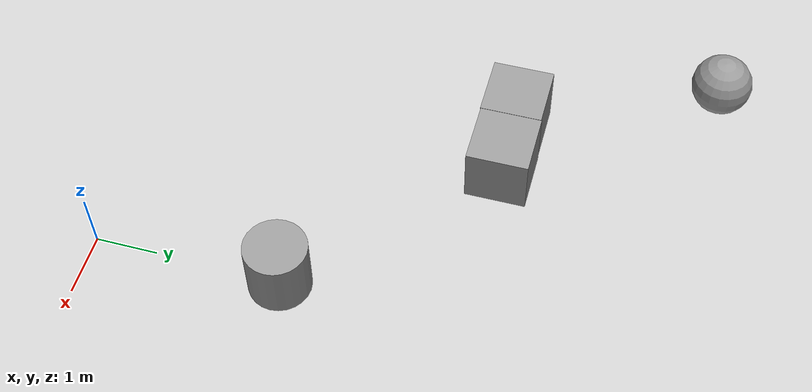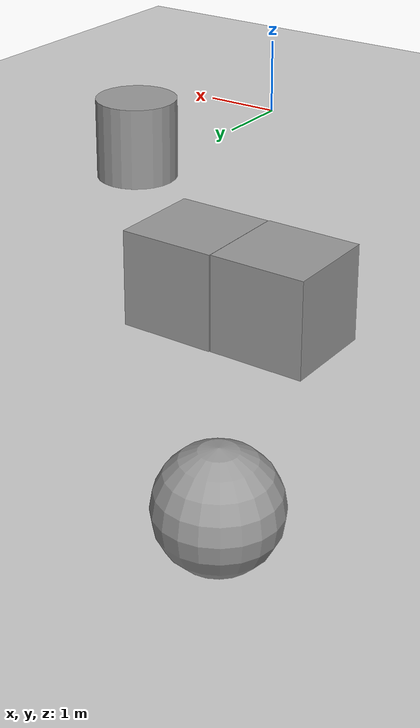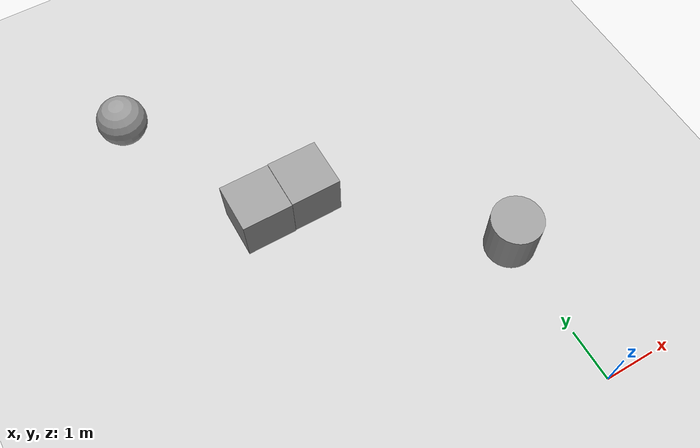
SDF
<sdf version="1.6">
 <world name="default">
  <light name="sun" type="directional">
   <pose>0 0 10 0 -0 0</pose>
   <diffuse>0.8 0.8 0.8 1</diffuse>
   <specular>0.1 0.1 0.1 1</specular>
   <attenuation>
    <range>1000</range>
    <constant>0.9</constant>
    <linear>0.01</linear>
    <quadratic>0.001</quadratic>
   </attenuation>
   <direction>-0.5 0.5 -1</direction>
  </light>
  <model name="ground_plane">
   <static>1</static>
   <link name="link">
    <collision name="collision">
     <geometry><plane><normal>0 0 1</normal><size>100 100</size></plane></geometry>
     <surface><friction><ode><mu>100</mu><mu2>50</mu2></ode></friction></surface>
    </collision>
    <visual name="visual">
     <cast_shadows>0</cast_shadows>
     <geometry><plane><normal>0 0 1</normal><size>100 100</size></plane></geometry>
     <material>
      <script><uri>file://media/materials/scripts/gazebo.material</uri><name>Gazebo/Grey</name></script>
     </material>
    </visual>
   </link>
  </model>
  <gravity>0 0 -9.8</gravity>
  <magnetic_field>6e-06 2.3e-05 -4.2e-05</magnetic_field>
  <atmosphere type="adiabatic"/>
  <physics name="default_physics" default="0" type="ode">
   <max_step_size>0.001</max_step_size>
   <real_time_factor>1</real_time_factor>
   <real_time_update_rate>1000</real_time_update_rate>
  </physics>
  <scene><ambient>0.4 0.4 0.4 1</ambient><background>0.7 0.7 0.7 1</background><shadows>1</shadows></scene>
  <spherical_coordinates>
   <surface_model>EARTH_WGS84</surface_model>
   <latitude_deg>0</latitude_deg>
   <longitude_deg>0</longitude_deg>
   <elevation>0</elevation>
   <heading_deg>0</heading_deg>
  </spherical_coordinates>
  <model name="unit_box_0_0">
   <pose>-3.86241 5.85747 0.499995 -1e-05 0 0</pose>
   <link name="link">
    <inertial>
     <mass>1</mass>
     <inertia>
      <ixx>0.166667</ixx>
      <ixy>0</ixy>
      <ixz>0</ixz>
      <iyy>0.166667</iyy>
      <iyz>0</iyz>
      <izz>0.166667</izz>
     </inertia>
    </inertial>
    <collision name="collision"><geometry><box><size>1 1 1</size></box></geometry></collision>
    <visual name="visual">
     <geometry><box><size>1 1 1</size></box></geometry>
     <material>
      <script><name>Gazebo/Grey</name><uri>file://media/materials/scripts/gazebo.material</uri></script>
     </material>
    </visual>
   </link>
  </model>
  <model name="unit_sphere_0">
   <pose>-5.306 9.05196 0.5 0 -0 0</pose>
   <link name="link">
    <inertial>
     <mass>1</mass>
     <inertia><ixx>0.1</ixx><ixy>0</ixy><ixz>0</ixz><iyy>0.1</iyy><iyz>0</iyz><izz>0.1</izz></inertia>
    </inertial>
    <collision name="collision"><geometry><sphere><radius>0.5</radius></sphere></geometry></collision>
    <visual name="visual">
     <geometry><sphere><radius>0.5</radius></sphere></geometry>
     <material>
      <script><name>Gazebo/Grey</name><uri>file://media/materials/scripts/gazebo.material</uri></script>
     </material>
    </visual>
   </link>
  </model>
  <light name="user_spot_light_0" type="spot">
   <pose>-4.99505 8.00434 1 0 -0 0</pose>
   <diffuse>0.5 0.5 0.5 1</diffuse>
   <specular>0.1 0.1 0.1 1</specular>
   <direction>0 0 -1</direction>
   <attenuation>
    <range>20</range>
    <constant>0.5</constant>
    <linear>0.01</linear>
    <quadratic>0.001</quadratic>
   </attenuation>
   <cast_shadows>0</cast_shadows>
   <spot><inner_angle>0.6</inner_angle><outer_angle>1</outer_angle><falloff>1</falloff></spot>
  </light>
  <model name="unit_box_0_1">
   <pose>-2.85818 5.86766 0.499995 -1e-05 0 0</pose>
   <link name="link">
    <inertial>
     <mass>1</mass>
     <inertia>
      <ixx>0.166667</ixx>
      <ixy>0</ixy>
      <ixz>0</ixz>
      <iyy>0.166667</iyy>
      <iyz>0</iyz>
      <izz>0.166667</izz>
     </inertia>
    </inertial>
    <collision name="collision"><geometry><box><size>1 1 1</size></box></geometry></collision>
    <visual name="visual">
     <geometry><box><size>1 1 1</size></box></geometry>
     <material>
      <script><name>Gazebo/Grey</name><uri>file://media/materials/scripts/gazebo.material</uri></script>
     </material>
    </visual>
   </link>
  </model>
  <model name="unit_cylinder_0">
   <pose>0.022801 3.0502 0.499997 3e-06 4e-06 -0</pose>
   <link name="link">
    <inertial>
     <mass>1</mass>
     <inertia><ixx>0.145833</ixx><ixy>0</ixy><ixz>0</ixz><iyy>0.145833</iyy><iyz>0</iyz><izz>0.125</izz></inertia>
    </inertial>
    <collision name="collision">
     <geometry><cylinder><radius>0.5</radius><length>1</length></cylinder></geometry>
    </collision>
    <visual name="visual">
     <geometry><cylinder><radius>0.5</radius><length>1</length></cylinder></geometry>
     <material>
      <script><name>Gazebo/Grey</name><uri>file://media/materials/scripts/gazebo.material</uri></script>
     </material>
    </visual>
   </link>
  </model>
 </world>
</sdf>
